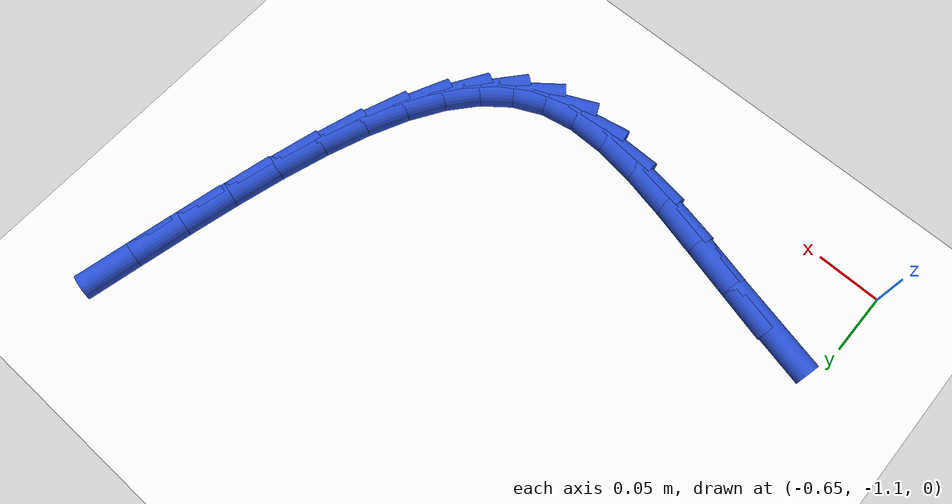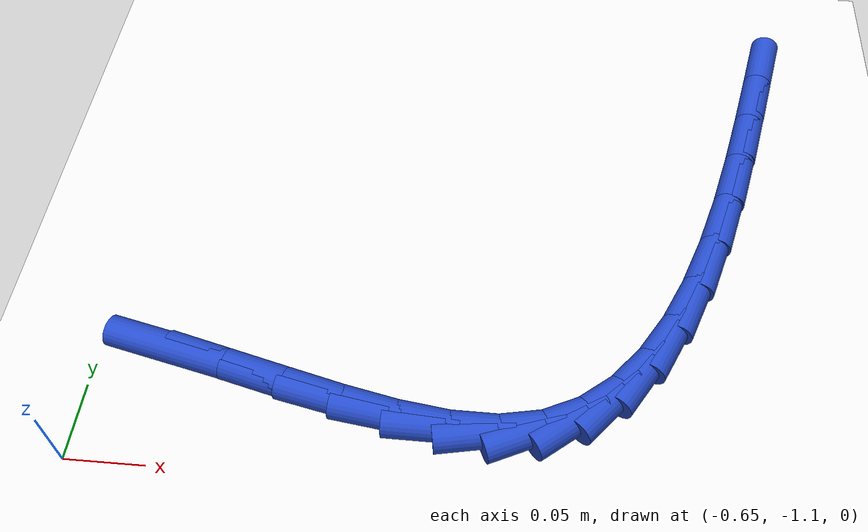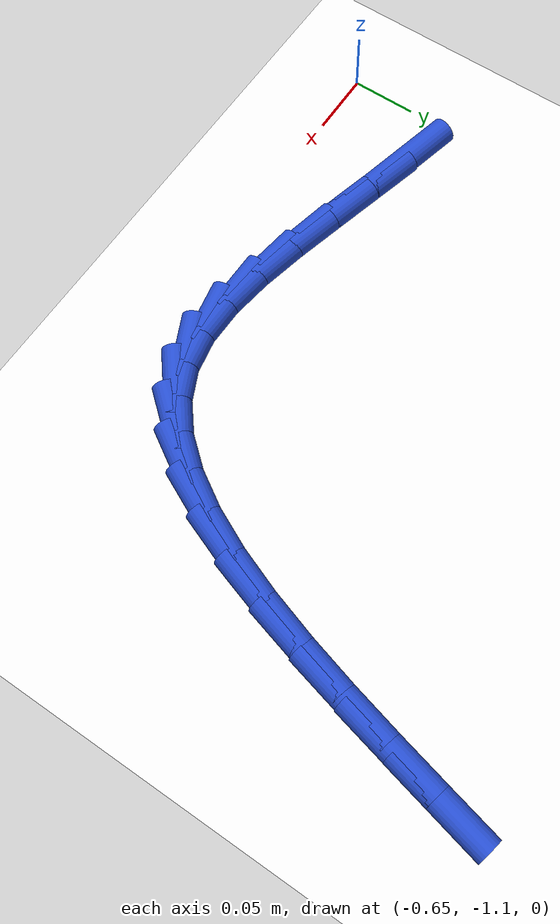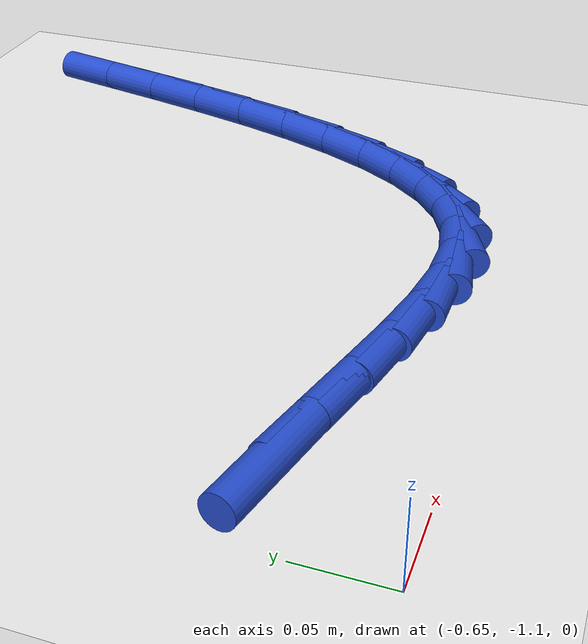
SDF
<sdf version="1.6">
 <world name="default">
  <model name="ground_plane">
   <static>1</static>
   <link name="link">
    <collision name="collision">
     <geometry><plane><normal>0 0 1</normal><size>100 100</size></plane></geometry>
     <surface><friction><ode><mu>100</mu><mu2>50</mu2></ode></friction></surface>
    </collision>
    <visual name="visual">
     <cast_shadows>0</cast_shadows>
     <geometry><plane><normal>0 0 1</normal><size>100 100</size></plane></geometry>
     <material>
      <script><uri>file://media/materials/scripts/gazebo.material</uri><name>Gazebo/WhiteGlow</name></script>
     </material>
    </visual>
   </link>
  </model>
  <model name="line">
   <link name="link_182">
    <pose>-0.6035028530510185 -1.025009043591613 0.01 0 1.57 -0.2292661385860938</pose>
    <collision name="collision">
     <geometry><cylinder><radius>0.01</radius><length>0.08</length></cylinder></geometry>
    </collision>
    <visual name="visual">
     <material>
      <script><name>Gazebo/Blue</name><uri>file://media/materials/scripts/gazebo.material</uri></script>
     </material>
     <geometry><cylinder><radius>0.01</radius><length>0.08</length></cylinder></geometry>
    </visual>
   </link>
   <link name="link_183">
    <pose>-0.5647444908285195 -1.0340540593757208 0.01 0 1.57 -0.2527412090420639</pose>
    <collision name="collision">
     <geometry><cylinder><radius>0.01</radius><length>0.08</length></cylinder></geometry>
    </collision>
    <visual name="visual">
     <material>
      <script><name>Gazebo/Blue</name><uri>file://media/materials/scripts/gazebo.material</uri></script>
     </material>
     <geometry><cylinder><radius>0.01</radius><length>0.08</length></cylinder></geometry>
    </visual>
   </link>
   <link name="link_184">
    <pose>-0.5269280259057629 -1.0438206874033942 0.01 0 1.57 -0.24837270861841895</pose>
    <collision name="collision">
     <geometry><cylinder><radius>0.01</radius><length>0.08</length></cylinder></geometry>
    </collision>
    <visual name="visual">
     <material>
      <script><name>Gazebo/Blue</name><uri>file://media/materials/scripts/gazebo.material</uri></script>
     </material>
     <geometry><cylinder><radius>0.01</radius><length>0.08</length></cylinder></geometry>
    </visual>
   </link>
   <link name="link_185">
    <pose>-0.49045020468410694 -1.053071800273495 0.01 0 1.57 -0.21256966656207643</pose>
    <collision name="collision">
     <geometry><cylinder><radius>0.01</radius><length>0.08</length></cylinder></geometry>
    </collision>
    <visual name="visual">
     <material>
      <script><name>Gazebo/Blue</name><uri>file://media/materials/scripts/gazebo.material</uri></script>
     </material>
     <geometry><cylinder><radius>0.01</radius><length>0.08</length></cylinder></geometry>
    </visual>
   </link>
   <link name="link_186">
    <pose>-0.45570777356490955 -1.0605702705848858 0.01 0 1.57 -0.1373890143612596</pose>
    <collision name="collision">
     <geometry><cylinder><radius>0.01</radius><length>0.08</length></cylinder></geometry>
    </collision>
    <visual name="visual">
     <material>
      <script><name>Gazebo/Blue</name><uri>file://media/materials/scripts/gazebo.material</uri></script>
     </material>
     <geometry><cylinder><radius>0.01</radius><length>0.08</length></cylinder></geometry>
    </visual>
   </link>
   <link name="link_187">
    <pose>-0.42309747894953065 -1.0650789709364281 0.01 0 1.57 -0.0093677367958491</pose>
    <collision name="collision">
     <geometry><cylinder><radius>0.01</radius><length>0.08</length></cylinder></geometry>
    </collision>
    <visual name="visual">
     <material>
      <script><name>Gazebo/Blue</name><uri>file://media/materials/scripts/gazebo.material</uri></script>
     </material>
     <geometry><cylinder><radius>0.01</radius><length>0.08</length></cylinder></geometry>
    </visual>
   </link>
   <link name="link_188">
    <pose>-0.3930160672393279 -1.0653607739269846 0.01 0 1.57 0.18839361054080794</pose>
    <collision name="collision">
     <geometry><cylinder><radius>0.01</radius><length>0.08</length></cylinder></geometry>
    </collision>
    <visual name="visual">
     <material>
      <script><name>Gazebo/Blue</name><uri>file://media/materials/scripts/gazebo.material</uri></script>
     </material>
     <geometry><cylinder><radius>0.01</radius><length>0.08</length></cylinder></geometry>
    </visual>
   </link>
   <link name="link_189">
    <pose>-0.36585852155501286 -1.0601830643910815 0.01 0 1.57 0.43926230287669354</pose>
    <collision name="collision">
     <geometry><cylinder><radius>0.01</radius><length>0.08</length></cylinder></geometry>
    </collision>
    <visual name="visual">
     <material>
      <script><name>Gazebo/Blue</name><uri>file://media/materials/scripts/gazebo.material</uri></script>
     </material>
     <geometry><cylinder><radius>0.01</radius><length>0.08</length></cylinder></geometry>
    </visual>
   </link>
   <link name="link_190">
    <pose>-0.34179911009769737 -1.048878036703732 0.01 0 1.57 0.6752344990834124</pose>
    <collision name="collision">
     <geometry><cylinder><radius>0.01</radius><length>0.08</length></cylinder></geometry>
    </collision>
    <visual name="visual">
     <material>
      <script><name>Gazebo/Blue</name><uri>file://media/materials/scripts/gazebo.material</uri></script>
     </material>
     <geometry><cylinder><radius>0.01</radius><length>0.08</length></cylinder></geometry>
    </visual>
   </link>
   <link name="link_191">
    <pose>-0.3205794242553962 -1.0318851053247033 0.01 0 1.57 0.8691235035221964</pose>
    <collision name="collision">
     <geometry><cylinder><radius>0.01</radius><length>0.08</length></cylinder></geometry>
    </collision>
    <visual name="visual">
     <material>
      <script><name>Gazebo/Blue</name><uri>file://media/materials/scripts/gazebo.material</uri></script>
     </material>
     <geometry><cylinder><radius>0.01</radius><length>0.08</length></cylinder></geometry>
    </visual>
   </link>
   <link name="link_192">
    <pose>-0.3018907785610664 -1.009772343199797 0.01 0 1.57 1.0175826666875092</pose>
    <collision name="collision">
     <geometry><cylinder><radius>0.01</radius><length>0.08</length></cylinder></geometry>
    </collision>
    <visual name="visual">
     <material>
      <script><name>Gazebo/Blue</name><uri>file://media/materials/scripts/gazebo.material</uri></script>
     </material>
     <geometry><cylinder><radius>0.01</radius><length>0.08</length></cylinder></geometry>
    </visual>
   </link>
   <link name="link_193">
    <pose>-0.2854244875476661 -0.9831078232748149 0.01 0 1.57 1.1274884422458635</pose>
    <collision name="collision">
     <geometry><cylinder><radius>0.01</radius><length>0.08</length></cylinder></geometry>
    </collision>
    <visual name="visual">
     <material>
      <script><name>Gazebo/Blue</name><uri>file://media/materials/scripts/gazebo.material</uri></script>
     </material>
     <geometry><cylinder><radius>0.01</radius><length>0.08</length></cylinder></geometry>
    </visual>
   </link>
   <link name="link_194">
    <pose>-0.27087186574815325 -0.9524596184955595 0.01 0 1.57 1.2075624166243037</pose>
    <collision name="collision">
     <geometry><cylinder><radius>0.01</radius><length>0.08</length></cylinder></geometry>
    </collision>
    <visual name="visual">
     <material>
      <script><name>Gazebo/Blue</name><uri>file://media/materials/scripts/gazebo.material</uri></script>
     </material>
     <geometry><cylinder><radius>0.01</radius><length>0.08</length></cylinder></geometry>
    </visual>
   </link>
   <link name="link_195">
    <pose>-0.25792422769548556 -0.9183958018078316 0.01 0 1.57 1.2650376257193285</pose>
    <collision name="collision">
     <geometry><cylinder><radius>0.01</radius><length>0.08</length></cylinder></geometry>
    </collision>
    <visual name="visual">
     <material>
      <script><name>Gazebo/Blue</name><uri>file://media/materials/scripts/gazebo.material</uri></script>
     </material>
     <geometry><cylinder><radius>0.01</radius><length>0.08</length></cylinder></geometry>
    </visual>
   </link>
   <link name="link_196">
    <pose>-0.2462728879226216 -0.8814844461574354 0.01 0 1.57 1.3051304882748593</pose>
    <collision name="collision">
     <geometry><cylinder><radius>0.01</radius><length>0.08</length></cylinder></geometry>
    </collision>
    <visual name="visual">
     <material>
      <script><name>Gazebo/Blue</name><uri>file://media/materials/scripts/gazebo.material</uri></script>
     </material>
     <geometry><cylinder><radius>0.01</radius><length>0.08</length></cylinder></geometry>
    </visual>
   </link>
   <link name="link_197">
    <pose>-0.23560916096251908 -0.8422936244901716 0.01 0 1.57 1.331365138212601</pose>
    <collision name="collision">
     <geometry><cylinder><radius>0.01</radius><length>0.08</length></cylinder></geometry>
    </collision>
    <visual name="visual">
     <material>
      <script><name>Gazebo/Blue</name><uri>file://media/materials/scripts/gazebo.material</uri></script>
     </material>
     <geometry><cylinder><radius>0.01</radius><length>0.08</length></cylinder></geometry>
    </visual>
   </link>
   <link name="link_198">
    <pose>-0.22562436134813582 -0.8013914097518424 0.01 0 1.57 1.3459913638142134</pose>
    <collision name="collision">
     <geometry><cylinder><radius>0.01</radius><length>0.08</length></cylinder></geometry>
    </collision>
    <visual name="visual">
     <material>
      <script><name>Gazebo/Blue</name><uri>file://media/materials/scripts/gazebo.material</uri></script>
     </material>
     <geometry><cylinder><radius>0.01</radius><length>0.08</length></cylinder></geometry>
    </visual>
   </link>
   <link name="link_199">
    <pose>-0.21600980361242964 -0.7593458748882487 0.01 0 1.57 1.3503010592866074</pose>
    <collision name="collision">
     <geometry><cylinder><radius>0.01</radius><length>0.08</length></cylinder></geometry>
    </collision>
    <visual name="visual">
     <material>
      <script><name>Gazebo/Blue</name><uri>file://media/materials/scripts/gazebo.material</uri></script>
     </material>
     <geometry><cylinder><radius>0.01</radius><length>0.08</length></cylinder></geometry>
    </visual>
   </link>
  </model>
 </world>
</sdf>
